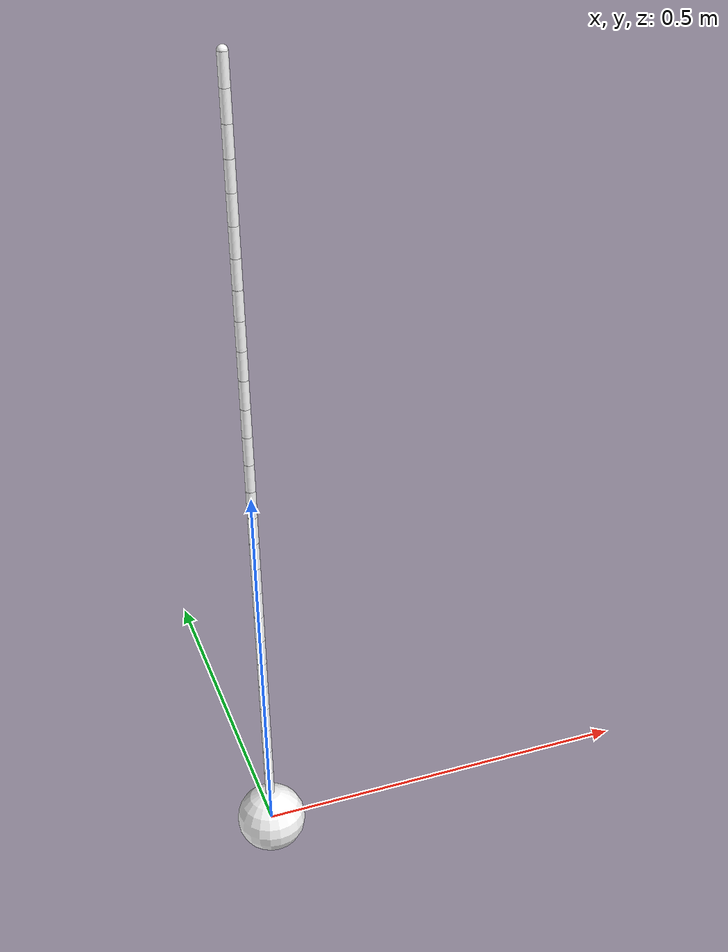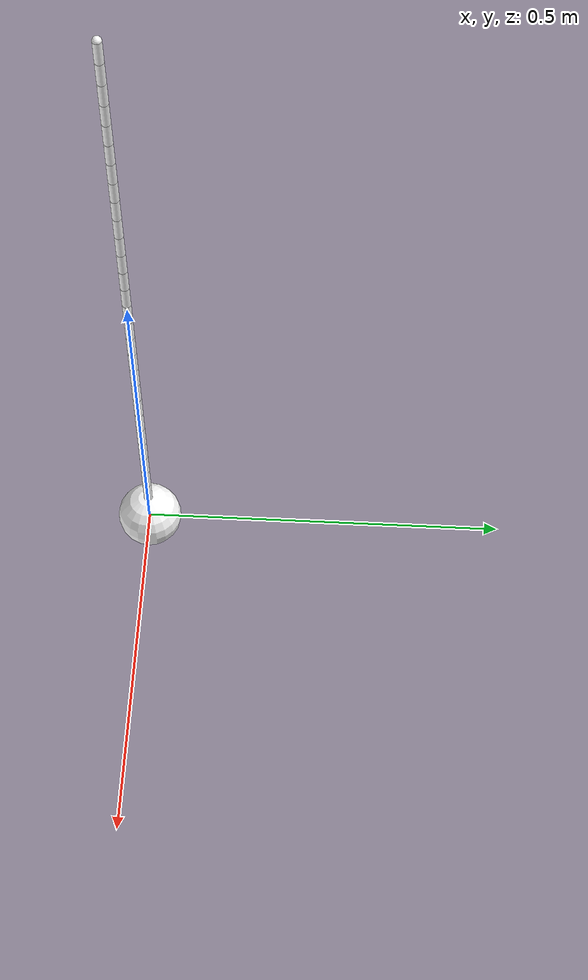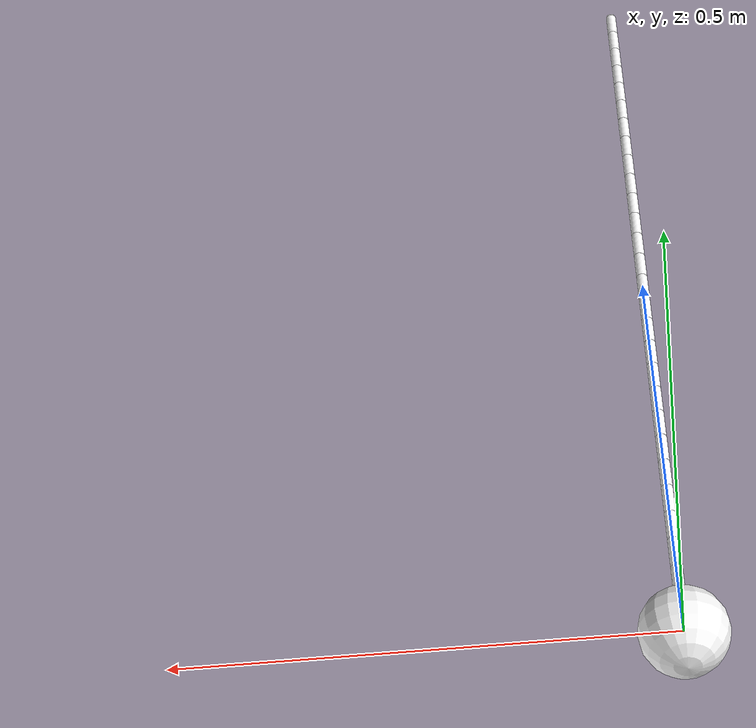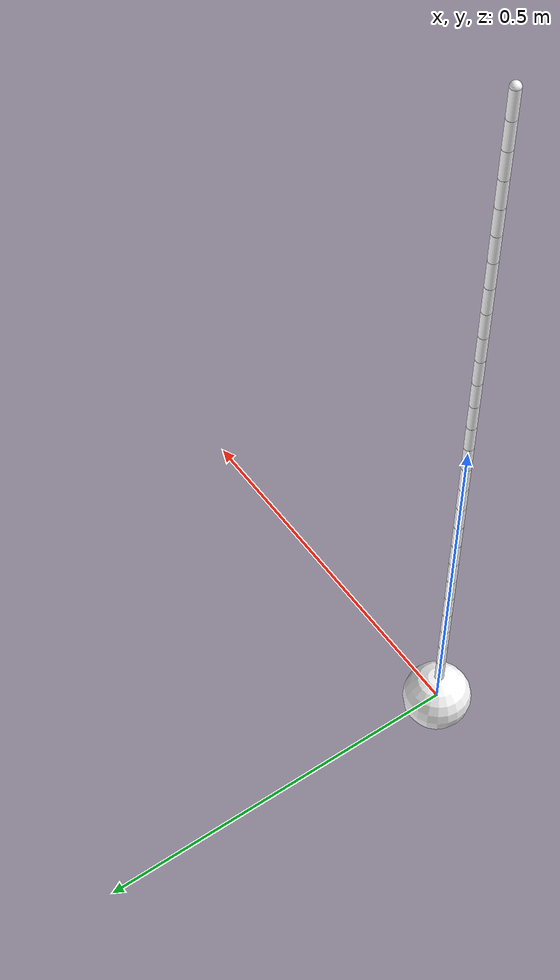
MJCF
<mujoco model="whip">
  <compiler angle="radian" autolimits="true"/>

  <option integrator="implicit" impratio="10"/> <!-- 椭圆摩擦锥的摩擦-法向约束阻抗比率, 大于1的设置会使摩擦力比法向力“更硬”, 从而防止滑动, 但不会增加实际摩擦系数.  -->

  <default>
    <default class="whip">
      <default class="X">
        <joint type="hinge" axis="1 0 0" pos="0 0 0" springref="0" stiffness="0.242" damping="0.092" />
      </default>
      <default class="Y">
        <joint type="hinge" axis="0 1 0" pos="0 0 0" springref="0" stiffness="0.242" damping="0.092" />
      </default>
      <default class="sphere">
        <geom type="sphere" material="white" pos="0 0 0.036" size="0.006" mass="0.012" />
      </default>
      <default class="cylinder">
        <geom type="cylinder" material="white" fromto="0 0 0 0 0 0.036" size="0.006" mass="0" />
      </default>
    </default>
  </default>

  <asset>
    <material class="whip" name="white" rgba="1 1 1 1"/>
  </asset>

  <worldbody>
    <body name="whip" childclass="whip">
      <geom type="sphere" size="0.045" material="white"/>
      <body name="N00" pos="0 0 0.045">
        <joint class="X"/>
        <joint class="Y"/>
        <geom  class="cylinder" />
        <geom  class="sphere"/>
        <body name="N01" pos="0 0 0.036">
          <joint class="X"/>
          <joint class="Y"/>
          <geom  class="cylinder" />
          <geom  class="sphere"/>
          <body name="N02" pos="0 0 0.036">
            <joint class="X"/>
            <joint class="Y"/>
            <geom  class="cylinder" />
            <geom  class="sphere"/>
            <body name="N03" pos="0 0 0.036">
              <joint class="X"/>
              <joint class="Y"/>
              <geom  class="cylinder" />
              <geom  class="sphere"/>
              <body name="N04" pos="0 0 0.036">
                <joint class="X"/>
                <joint class="Y"/>
                <geom  class="cylinder" />
                <geom  class="sphere"/>
                <body name="N05" pos="0 0 0.036">
                  <joint class="X"/>
                  <joint class="Y"/>
                  <geom  class="cylinder" />
                  <geom  class="sphere"/>
                  <body name="N06" pos="0 0 0.036">
                    <joint class="X"/>
                    <joint class="Y"/>
                    <geom  class="cylinder" />
                    <geom  class="sphere"/>
                    <body name="N07" pos="0 0 0.036">
                      <joint class="X"/>
                      <joint class="Y"/>
                      <geom  class="cylinder" />
                      <geom  class="sphere"/>
                      <body name="N08" pos="0 0 0.036">
                        <joint class="X"/>
                        <joint class="Y"/>
                        <geom  class="cylinder" />
                        <geom  class="sphere"/>
                        <body name="N09" pos="0 0 0.036">
                          <joint class="X"/>
                          <joint class="Y"/>
                          <geom  class="cylinder" />
                          <geom  class="sphere"/>
                          <body name="N10" pos="0 0 0.036">
                            <joint class="X"/>
                            <joint class="Y"/>
                            <geom  class="cylinder" />
                            <geom  class="sphere"/>
                            <body name="N11" pos="0 0 0.036">
                              <joint class="X"/>
                              <joint class="Y"/>
                              <geom  class="cylinder" />
                              <geom  class="sphere"/>
                              <body name="N12" pos="0 0 0.036">
                                <joint class="X"/>
                                <joint class="Y"/>
                                <geom  class="cylinder" />
                                <geom  class="sphere"/>
                                <body name="N13" pos="0 0 0.036">
                                  <joint class="X"/>
                                  <joint class="Y"/>
                                  <geom  class="cylinder" />
                                  <geom  class="sphere"/>
                                  <body name="N14" pos="0 0 0.036">
                                    <joint class="X"/>
                                    <joint class="Y"/>
                                    <geom  class="cylinder" />
                                    <geom  class="sphere"/>
                                    <body name="N15" pos="0 0 0.036">
                                      <joint class="X"/>
                                      <joint class="Y"/>
                                      <geom  class="cylinder" />
                                      <geom  class="sphere"/>
                                      <body name="N16" pos="0 0 0.036">
                                        <joint class="X"/>
                                        <joint class="Y"/>
                                        <geom  class="cylinder" />
                                        <geom  class="sphere"/>
                                        <body name="N17" pos="0 0 0.036">
                                          <joint class="X"/>
                                          <joint class="Y"/>
                                          <geom  class="cylinder" />
                                          <geom  class="sphere"/>
                                          <body name="N18" pos="0 0 0.036">
                                            <joint class="X"/>
                                            <joint class="Y"/>
                                            <geom  class="cylinder" />
                                            <geom  class="sphere"/>
                                            <body name="N19" pos="0 0 0.036">
                                              <joint class="X"/>
                                              <joint class="Y"/>
                                              <geom  class="cylinder" />
                                              <geom  class="sphere"/>
                                              <body name="N20" pos="0 0 0.036">
                                                <joint class="X"/>
                                                <joint class="Y"/>
                                                <geom  class="cylinder" />
                                                <geom  class="sphere"/>
                                                <body name="N21" pos="0 0 0.036">
                                                  <joint class="X"/>
                                                  <joint class="Y"/>
                                                  <geom  class="cylinder" />
                                                  <geom  class="sphere"/>
                                                  <body name="N22" pos="0 0 0.036">
                                                    <joint class="X"/>
                                                    <joint class="Y"/>
                                                    <geom  class="cylinder" />
                                                    <geom  class="sphere"/>
                                                    <body name="N23" pos="0 0 0.036">
                                                      <joint class="X"/>
                                                      <joint class="Y"/>
                                                      <geom  class="cylinder" />
                                                      <geom  class="sphere"/>
                                                      <body name="N24" pos="0 0 0.036">
                                                        <joint class="X"/>
                                                        <joint class="Y"/>
                                                        <geom  class="cylinder" />
                                                        <geom  class="sphere"/>
                                                        <body name="N25" pos="0 0 0.036">
                                                          <joint class="X"/>
                                                          <joint class="Y"/>
                                                          <geom  class="cylinder" />
                                                          <geom  class="sphere"/>
                                                          <body name="N26" pos="0 0 0.036">
                                                            <joint class="X"/>
                                                            <joint class="Y"/>
                                                            <geom  class="cylinder" />
                                                            <geom  class="sphere"/>
                                                            <site name="whip_end" pos="0 0 0.036"/>
                                                          </body>
                                                        </body>
                                                      </body>
                                                    </body>
                                                  </body>
                                                </body>
                                              </body>
                                            </body>
                                          </body>
                                        </body>
                                      </body>
                                    </body>
                                  </body>
                                </body>
                              </body>
                            </body>
                          </body>
                        </body>
                      </body>
                    </body>
                  </body>
                </body>
              </body>
            </body>
          </body>
        </body>
      </body>
    </body>
  </worldbody>
</mujoco>
